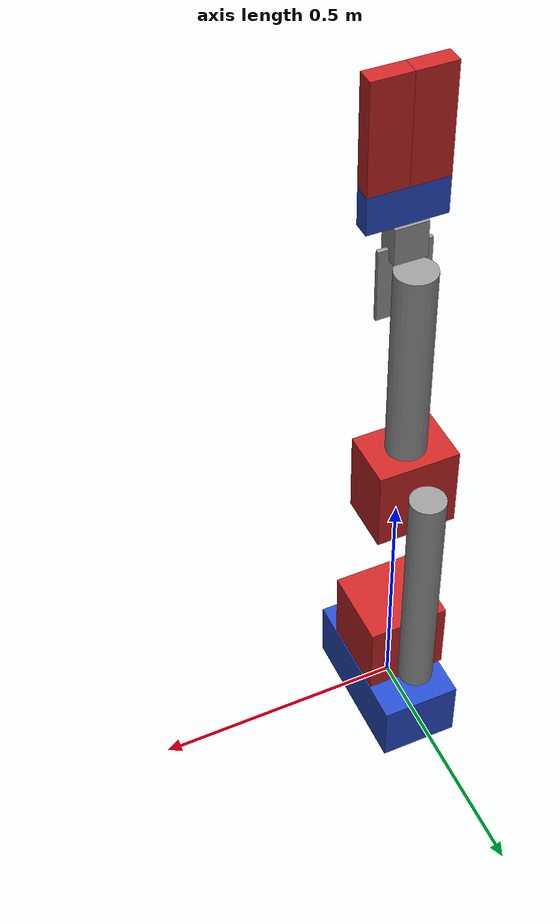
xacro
<?xml version="1.0"?>
<robot xmlns:xacro="http://www.ros.org/wiki/xacro" name="rover_arm">
    <xacro:arg name="initial_positions_file" default="initial_positions.yaml" />
    <xacro:arg name="use_fake_hardware" default="false" />

    <!-- Import rover_arm urdf file -->
    <xacro:include filename="$(find rover_arm_description)/urdf/arm.urdf.xacro" />

    <!-- Import control_xacro -->
    <xacro:include filename="rover_arm.ros2_control.xacro" />

        <xacro:rover_arm_ros2_control
            name="FakeSystem"
            initial_positions_file="$(arg initial_positions_file)"
            use_fake_hardware="$(arg use_fake_hardware)"/>
</robot>

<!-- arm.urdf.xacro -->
<robot name="rover_arm" xmlns:xacro="http://www.ros.org/wiki/xacro">

    <xacro:include filename="arm.xacro"/>
    <xacro:include filename="gripper.xacro"/>
    <xacro:include filename="common_properties.xacro"/>

    <joint name="joint7" type="revolute">
        <parent link="gripper_base_link"/>
        <child link="gripper_claw_link"/>
        <origin xyz="0.005725 0 0.07" rpy="0 0 0"/>
        <axis xyz="0 0 1"/>
        <limit effort="100.0" lower="-1.57" upper="1.57" velocity="1.0" />
    </joint>

</robot>

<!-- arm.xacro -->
<robot xmlns:xacro="http://www.ros.org/wiki/xacro">

    <link name="base_structure_link">
        <visual>
            <geometry>
                <box size="0.30670 0.1600 0.135"/>
            </geometry>
            <origin xyz="0 0 0" rpy="0 0 1.57" />
            <material name="blue"/>
        </visual>
        <collision>
            <geometry>
                <box size="0.30670 0.1600 0.135"/>
            </geometry>
            <material name="blue"/>
        </collision>
    </link>

    <link name="base_pivot_link">
        <visual>
            <geometry>
                <box size="0.1633 0.1633 0.1633"/>
            </geometry>
            <origin xyz="0 0 0" rpy="0 0 0"/>
            <material name="red"/>
        </visual>
        <collision>
            <geometry>
                <box size="0.1633 0.1633 0.1633"/>
            </geometry>
            <material name="red"/>
        </collision>
    </link>

    <link name="bicep_tube_link">
        <visual>
            <geometry>
                <cylinder radius="0.0348" length="0.508"/>
            </geometry>
            <origin xyz="0 0 0.220" rpy="0 0 0"/>
            <material name="grey"/>
        </visual>
        <collision>
            <geometry>
                <cylinder radius="0.0348" length="0.508"/>
            </geometry>
            <material name="grey"/>
        </collision>
    </link>

    <link name="bicep_gearbox_link">
        <visual>
            <geometry>
                <box size="0.11615 0.158 0.170"/>
            </geometry>
            <origin xyz="0 0 0" rpy="0 0 1.57"/>
            <material name="red"/>
        </visual>
        <collision>
            <geometry>
                <box size="0.11615 0.158 0.170"/>
            </geometry>
            <material name="red"/>
        </collision>
    </link>

   <link name="forearm_tube_link">
        <visual>
            <geometry>
                <cylinder radius="0.03810" length="0.490"/>
            </geometry>
            <origin xyz="0 0 0.150" rpy="0 0 0"/>
            <material name="grey"/>
        </visual>
        <collision>
            <geometry>
                <cylinder radius="0.03810" length="0.490"/>
            </geometry>
            <material name="grey"/>
        </collision>
    </link>

     <link name="bracket_connection_link">
        <visual>
            <geometry>
                <box size="0.008 0.10030 0.14015"/>
            </geometry>
            <origin xyz="0 0 0" rpy="0 0 -1.57"/>
            <material name="grey"/>
        </visual>
        <collision>
            <geometry>
                <box size="0.008 0.10030 0.14015"/>
            </geometry>
            <material name="grey"/>
        </collision>
    </link>

    <link name="gripper_base_link">
        <visual>
            <geometry>
                <box size="0.04445 0.06200 0.07"/>
            </geometry>
            <origin xyz="0 0 0" rpy="0 0 -1.57"/>
            <material name="grey"/>
        </visual>
        <collision>
            <geometry>
                <box size="0.04445 0.06200 0.07"/>
            </geometry>
            <material name="grey"/>
        </collision>
    </link>

    <joint name="joint1" type="revolute">
        <parent link="base_structure_link"/>
        <child link="base_pivot_link"/>
        <origin xyz="0 0 0.1618" rpy="0 0 0"/>
        <axis xyz="0 0 1"/>
        <limit effort="100.0" lower="-1.57" upper="1.57" velocity="1.0" />
    </joint>

    <joint name="joint2" type="revolute">
        <parent link="base_pivot_link"/>
        <child link="bicep_tube_link"/>
        <origin xyz="0 0.11645 0" rpy="0 0 0"/>
        <axis xyz="0 1 0"/>
        <limit effort="100.0" lower="-0.701" upper="1.09" velocity="1.0" />
    </joint>

    <joint name="joint3" type="revolute">
        <parent link="bicep_tube_link"/>
        <child link="bicep_gearbox_link"/>
        <origin xyz="0 -0.092875 0.440" rpy="0 0 0"/>
        <axis xyz="0 1 0"/>
        <limit effort="100.0" lower="0.0" upper="2.109" velocity="1.0" />
    </joint>

   <joint name="joint4" type="revolute">
        <parent link="bicep_gearbox_link"/>
        <child link="forearm_tube_link"/>
        <origin xyz="0 0 0.085" rpy="0 0 0"/>
        <axis xyz=" 0 0 1"/>
        <limit effort="100.0" lower="-3.14159" upper="3.14159" velocity="1.0" />
    </joint>

    <joint name="joint5" type="revolute">
        <parent link="forearm_tube_link"/>
        <child link="bracket_connection_link"/>
        <origin xyz="0 -0.0421 0.35" rpy="0 0 0"/>
        <axis xyz="0 1 0"/>
        <limit effort="100.0" lower="-1.09" upper="1.57" velocity="1.0" />
    </joint>

    <joint name="joint6" type="fixed">
        <parent link="bracket_connection_link"/>
        <child link="gripper_base_link"/>
        <origin xyz="0 0 0.085075" rpy="0 0 0"/>
    </joint>

</robot>

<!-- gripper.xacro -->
<robot xmlns:xacro="http://www.ros.org/wiki/xacro">

    <link name="gripper_claw_link">
        <visual>
            <geometry>
                <box size="0.033 0.14759 0.070"/>
            </geometry>
            <origin xyz="0 0 0" rpy="0 0 -1.57"/>
            <material name="blue"/>
        </visual>
        <collision>
            <geometry>
                <box size="0.033 0.14759 0.070"/>
            </geometry>
            <material name="blue"/>
        </collision>
    </link>

    <link name="right_claw_link">
        <visual>
            <geometry>
                <box size="0.033 0.073795 0.200"/>
            </geometry>
            <origin xyz="0 0 0" rpy="0 0 1.57"/>
            <material name="red"/>
        </visual>
        <collision>
            <geometry>
                <box size="0.033 0.073795 0.200"/>
            </geometry>
            <material name="red"/>
        </collision>
    </link>

    <link name="left_claw_link">
        <visual>
            <geometry>
                <box size="0.033 0.073795 0.200"/>
            </geometry>
            <origin xyz="0 0 0" rpy="0 0 1.57"/>
            <material name="red"/>
        </visual>
        <collision>
            <geometry>
                <box size="0.033 0.073795 0.200"/>
            </geometry>
            <material name="red"/>
        </collision>
    </link>

    <joint name="right_finger" type="prismatic">
        <parent link="gripper_claw_link"/>
        <child link="right_claw_link"/>
        <origin xyz="0.036895 0 0.135" rpy="0 0 0"/>
        <axis xyz="0 1 0"/>
        <limit lower="0.0" upper="0.033" effort="100.0" velocity="1.0"/>
    </joint>

    <joint name="left_finger" type="prismatic">
        <parent link="gripper_claw_link"/>
        <child link="left_claw_link"/>
        <origin xyz="-0.036895 0 0.135" rpy="0 0 0"/>
        <axis xyz="0 1 0"/>
        <mimic joint="right_finger" multiplier="-1.0"/>
        <limit lower="-0.033" upper="0.0" effort="100.0" velocity="1.0"/>
    </joint>

</robot>
